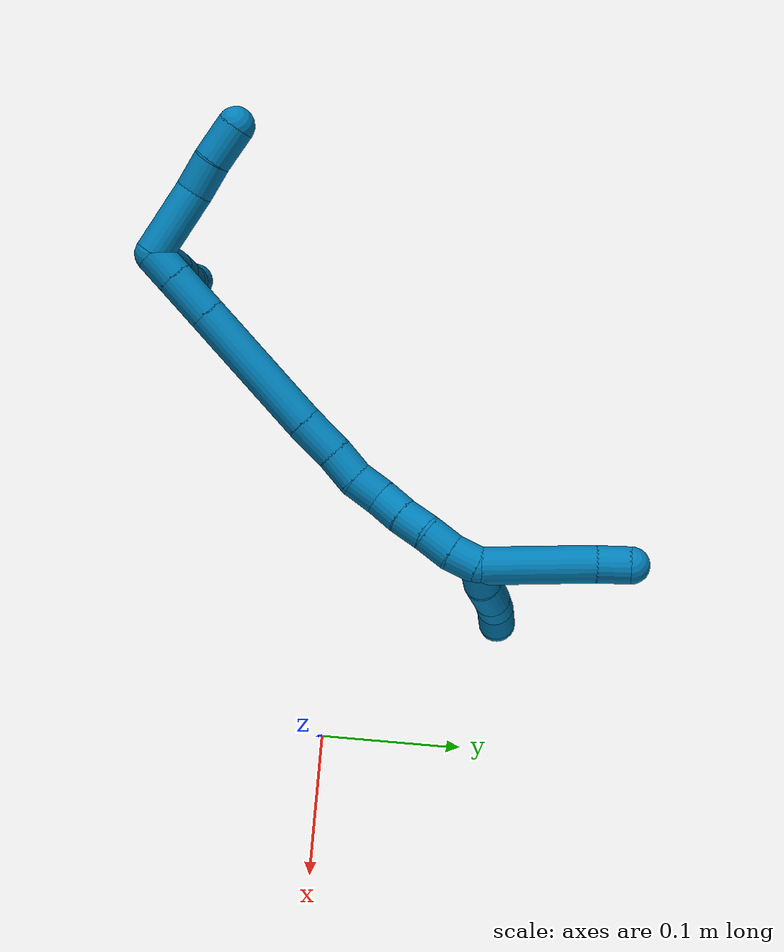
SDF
<sdf version="1.7">
 <world name="default">
  <model name="9">
   <static>0</static>
   <link name="9">
    <collision name="collision-cylinder-e_1_2_8">
     <pose>-0.012935 0.008031 -0.025464 -2.83608 -0.451135 1.95973</pose>
     <geometry><cylinder><radius>0.0125</radius><length>0.059337</length></cylinder></geometry>
     <surface>
      <friction><ode><mu>1.16</mu><mu2>1.16</mu2><slip1>0</slip1><slip2>0</slip2></ode></friction>
      <contact><ode><kp>1e+06</kp><kd>1</kd><max_vel>0</max_vel><min_depth>0.001</min_depth></ode></contact>
     </surface>
    </collision>
    <visual name="visual-cylinder-e_1_2_8">
     <pose>-0.012935 0.008031 -0.025464 -2.83608 -0.451135 1.95973</pose>
     <geometry><cylinder><radius>0.0125</radius><length>0.059337</length></cylinder></geometry>
     <material><ambient>0 0.490196 0.709804 1</ambient></material>
    </visual>
    <collision name="collision-cylinder-e_2_8_9">
     <pose>-0.031956 0.01914 -0.062742 -2.88671 -0.462445 2.14475</pose>
     <geometry><cylinder><radius>0.0125</radius><length>0.027283</length></cylinder></geometry>
     <surface>
      <friction><ode><mu>1.16</mu><mu2>1.16</mu2><slip1>0</slip1><slip2>0</slip2></ode></friction>
      <contact><ode><kp>1e+06</kp><kd>1</kd><max_vel>0</max_vel><min_depth>0.001</min_depth></ode></contact>
     </surface>
    </collision>
    <visual name="visual-cylinder-e_2_8_9">
     <pose>-0.031956 0.01914 -0.062742 -2.88671 -0.462445 2.14475</pose>
     <geometry><cylinder><radius>0.0125</radius><length>0.027283</length></cylinder></geometry>
     <material><ambient>0 0.490196 0.709804 1</ambient></material>
    </visual>
    <collision name="collision-cylinder-e_3_9_10">
     <pose>-0.042785 0.024737 -0.084583 -2.89549 -0.430163 2.11132</pose>
     <geometry><cylinder><radius>0.0125</radius><length>0.022749</length></cylinder></geometry>
     <surface>
      <friction><ode><mu>1.16</mu><mu2>1.16</mu2><slip1>0</slip1><slip2>0</slip2></ode></friction>
      <contact><ode><kp>1e+06</kp><kd>1</kd><max_vel>0</max_vel><min_depth>0.001</min_depth></ode></contact>
     </surface>
    </collision>
    <visual name="visual-cylinder-e_3_9_10">
     <pose>-0.042785 0.024737 -0.084583 -2.89549 -0.430163 2.11132</pose>
     <geometry><cylinder><radius>0.0125</radius><length>0.022749</length></cylinder></geometry>
     <material><ambient>0 0.490196 0.709804 1</ambient></material>
    </visual>
    <collision name="collision-cylinder-e_4_10_11">
     <pose>-0.052877 0.029602 -0.103026 -2.86965 -0.54928 2.2375</pose>
     <geometry><cylinder><radius>0.0125</radius><length>0.020489</length></cylinder></geometry>
     <surface>
      <friction><ode><mu>1.16</mu><mu2>1.16</mu2><slip1>0</slip1><slip2>0</slip2></ode></friction>
      <contact><ode><kp>1e+06</kp><kd>1</kd><max_vel>0</max_vel><min_depth>0.001</min_depth></ode></contact>
     </surface>
    </collision>
    <visual name="visual-cylinder-e_4_10_11">
     <pose>-0.052877 0.029602 -0.103026 -2.86965 -0.54928 2.2375</pose>
     <geometry><cylinder><radius>0.0125</radius><length>0.020489</length></cylinder></geometry>
     <material><ambient>0 0.490196 0.709804 1</ambient></material>
    </visual>
    <collision name="collision-cylinder-e_5_11_6">
     <pose>-0.063942 0.035216 -0.119063 -2.73666 -0.603645 1.97574</pose>
     <geometry><cylinder><radius>0.0125</radius><length>0.020142</length></cylinder></geometry>
     <surface>
      <friction><ode><mu>1.16</mu><mu2>1.16</mu2><slip1>0</slip1><slip2>0</slip2></ode></friction>
      <contact><ode><kp>1e+06</kp><kd>1</kd><max_vel>0</max_vel><min_depth>0.001</min_depth></ode></contact>
     </surface>
    </collision>
    <visual name="visual-cylinder-e_5_11_6">
     <pose>-0.063942 0.035216 -0.119063 -2.73666 -0.603645 1.97574</pose>
     <geometry><cylinder><radius>0.0125</radius><length>0.020142</length></cylinder></geometry>
     <material><ambient>0 0.490196 0.709804 1</ambient></material>
    </visual>
    <collision name="collision-cylinder-e_1_2_12">
     <pose>-0.005297 0.021486 0.010428 -1.11897 -0.218274 0.137021</pose>
     <geometry><cylinder><radius>0.0125</radius><length>0.048927</length></cylinder></geometry>
     <surface>
      <friction><ode><mu>1.16</mu><mu2>1.16</mu2><slip1>0</slip1><slip2>0</slip2></ode></friction>
      <contact><ode><kp>1e+06</kp><kd>1</kd><max_vel>0</max_vel><min_depth>0.001</min_depth></ode></contact>
     </surface>
    </collision>
    <visual name="visual-cylinder-e_1_2_12">
     <pose>-0.005297 0.021486 0.010428 -1.11897 -0.218274 0.137021</pose>
     <geometry><cylinder><radius>0.0125</radius><length>0.048927</length></cylinder></geometry>
     <material><ambient>0 0.490196 0.709804 1</ambient></material>
    </visual>
    <collision name="collision-cylinder-e_2_12_13">
     <pose>-0.011772 0.052374 0.028065 -0.916532 -0.09903 0.048881</pose>
     <geometry><cylinder><radius>0.0125</radius><length>0.023812</length></cylinder></geometry>
     <surface>
      <friction><ode><mu>1.16</mu><mu2>1.16</mu2><slip1>0</slip1><slip2>0</slip2></ode></friction>
      <contact><ode><kp>1e+06</kp><kd>1</kd><max_vel>0</max_vel><min_depth>0.001</min_depth></ode></contact>
     </surface>
    </collision>
    <visual name="visual-cylinder-e_2_12_13">
     <pose>-0.011772 0.052374 0.028065 -0.916532 -0.09903 0.048881</pose>
     <geometry><cylinder><radius>0.0125</radius><length>0.023812</length></cylinder></geometry>
     <material><ambient>0 0.490196 0.709804 1</ambient></material>
    </visual>
    <collision name="collision-cylinder-e_3_13_5">
     <pose>-0.014347 0.073411 0.042235 -1.03179 -0.102762 0.058313</pose>
     <geometry><cylinder><radius>0.0125</radius><length>0.027261</length></cylinder></geometry>
     <surface>
      <friction><ode><mu>1.16</mu><mu2>1.16</mu2><slip1>0</slip1><slip2>0</slip2></ode></friction>
      <contact><ode><kp>1e+06</kp><kd>1</kd><max_vel>0</max_vel><min_depth>0.001</min_depth></ode></contact>
     </surface>
    </collision>
    <visual name="visual-cylinder-e_3_13_5">
     <pose>-0.014347 0.073411 0.042235 -1.03179 -0.102762 0.058313</pose>
     <geometry><cylinder><radius>0.0125</radius><length>0.027261</length></cylinder></geometry>
     <material><ambient>0 0.490196 0.709804 1</ambient></material>
    </visual>
    <collision name="collision-cylinder-e_1_2_14">
     <pose>0.008758 0.001867 -0.005373 -2.80721 0.994784 -2.53884</pose>
     <geometry><cylinder><radius>0.0125</radius><length>0.020886</length></cylinder></geometry>
     <surface>
      <friction><ode><mu>1.16</mu><mu2>1.16</mu2><slip1>0</slip1><slip2>0</slip2></ode></friction>
      <contact><ode><kp>1e+06</kp><kd>1</kd><max_vel>0</max_vel><min_depth>0.001</min_depth></ode></contact>
     </surface>
    </collision>
    <visual name="visual-cylinder-e_1_2_14">
     <pose>0.008758 0.001867 -0.005373 -2.80721 0.994784 -2.53884</pose>
     <geometry><cylinder><radius>0.0125</radius><length>0.020886</length></cylinder></geometry>
     <material><ambient>0 0.490196 0.709804 1</ambient></material>
    </visual>
    <collision name="collision-cylinder-e_2_14_15">
     <pose>0.031023 0.006519 -0.018895 -2.8122 1.00319 -2.55303</pose>
     <geometry><cylinder><radius>0.0125</radius><length>0.032039</length></cylinder></geometry>
     <surface>
      <friction><ode><mu>1.16</mu><mu2>1.16</mu2><slip1>0</slip1><slip2>0</slip2></ode></friction>
      <contact><ode><kp>1e+06</kp><kd>1</kd><max_vel>0</max_vel><min_depth>0.001</min_depth></ode></contact>
     </surface>
    </collision>
    <visual name="visual-cylinder-e_2_14_15">
     <pose>0.031023 0.006519 -0.018895 -2.8122 1.00319 -2.55303</pose>
     <geometry><cylinder><radius>0.0125</radius><length>0.032039</length></cylinder></geometry>
     <material><ambient>0 0.490196 0.709804 1</ambient></material>
    </visual>
    <collision name="collision-cylinder-e_3_15_16">
     <pose>0.084704 0.017567 -0.051272 -2.81292 1.0035 -2.55447</pose>
     <geometry><cylinder><radius>0.0125</radius><length>0.095271</length></cylinder></geometry>
     <surface>
      <friction><ode><mu>1.16</mu><mu2>1.16</mu2><slip1>0</slip1><slip2>0</slip2></ode></friction>
      <contact><ode><kp>1e+06</kp><kd>1</kd><max_vel>0</max_vel><min_depth>0.001</min_depth></ode></contact>
     </surface>
    </collision>
    <visual name="visual-cylinder-e_3_15_16">
     <pose>0.084704 0.017567 -0.051272 -2.81292 1.0035 -2.55447</pose>
     <geometry><cylinder><radius>0.0125</radius><length>0.095271</length></cylinder></geometry>
     <material><ambient>0 0.490196 0.709804 1</ambient></material>
    </visual>
    <collision name="collision-cylinder-e_4_16_17">
     <pose>0.136743 0.02902 -0.082739 -2.72659 0.982714 -2.39195</pose>
     <geometry><cylinder><radius>0.0125</radius><length>0.02852</length></cylinder></geometry>
     <surface>
      <friction><ode><mu>1.16</mu><mu2>1.16</mu2><slip1>0</slip1><slip2>0</slip2></ode></friction>
      <contact><ode><kp>1e+06</kp><kd>1</kd><max_vel>0</max_vel><min_depth>0.001</min_depth></ode></contact>
     </surface>
    </collision>
    <visual name="visual-cylinder-e_4_16_17">
     <pose>0.136743 0.02902 -0.082739 -2.72659 0.982714 -2.39195</pose>
     <geometry><cylinder><radius>0.0125</radius><length>0.02852</length></cylinder></geometry>
     <material><ambient>0 0.490196 0.709804 1</ambient></material>
    </visual>
    <collision name="collision-cylinder-e_5_17_18">
     <pose>0.158096 0.033645 -0.095209 -2.87367 1.0515 -2.68515</pose>
     <geometry><cylinder><radius>0.0125</radius><length>0.02186</length></cylinder></geometry>
     <surface>
      <friction><ode><mu>1.16</mu><mu2>1.16</mu2><slip1>0</slip1><slip2>0</slip2></ode></friction>
      <contact><ode><kp>1e+06</kp><kd>1</kd><max_vel>0</max_vel><min_depth>0.001</min_depth></ode></contact>
     </surface>
    </collision>
    <visual name="visual-cylinder-e_5_17_18">
     <pose>0.158096 0.033645 -0.095209 -2.87367 1.0515 -2.68515</pose>
     <geometry><cylinder><radius>0.0125</radius><length>0.02186</length></cylinder></geometry>
     <material><ambient>0 0.490196 0.709804 1</ambient></material>
    </visual>
    <collision name="collision-cylinder-e_6_18_19">
     <pose>0.176303 0.038754 -0.104576 -2.41547 1.00533 -1.93224</pose>
     <geometry><cylinder><radius>0.0125</radius><length>0.020649</length></cylinder></geometry>
     <surface>
      <friction><ode><mu>1.16</mu><mu2>1.16</mu2><slip1>0</slip1><slip2>0</slip2></ode></friction>
      <contact><ode><kp>1e+06</kp><kd>1</kd><max_vel>0</max_vel><min_depth>0.001</min_depth></ode></contact>
     </surface>
    </collision>
    <visual name="visual-cylinder-e_6_18_19">
     <pose>0.176303 0.038754 -0.104576 -2.41547 1.00533 -1.93224</pose>
     <geometry><cylinder><radius>0.0125</radius><length>0.020649</length></cylinder></geometry>
     <material><ambient>0 0.490196 0.709804 1</ambient></material>
    </visual>
    <collision name="collision-cylinder-e_7_19_20">
     <pose>0.19465 0.044725 -0.110557 -2.24723 1.27392 -1.99133</pose>
     <geometry><cylinder><radius>0.0125</radius><length>0.020141</length></cylinder></geometry>
     <surface>
      <friction><ode><mu>1.16</mu><mu2>1.16</mu2><slip1>0</slip1><slip2>0</slip2></ode></friction>
      <contact><ode><kp>1e+06</kp><kd>1</kd><max_vel>0</max_vel><min_depth>0.001</min_depth></ode></contact>
     </surface>
    </collision>
    <visual name="visual-cylinder-e_7_19_20">
     <pose>0.19465 0.044725 -0.110557 -2.24723 1.27392 -1.99133</pose>
     <geometry><cylinder><radius>0.0125</radius><length>0.020141</length></cylinder></geometry>
     <material><ambient>0 0.490196 0.709804 1</ambient></material>
    </visual>
    <collision name="collision-cylinder-e_8_20_21">
     <pose>0.213683 0.050191 -0.113811 -1.98925 1.21741 -1.64099</pose>
     <geometry><cylinder><radius>0.0125</radius><length>0.020044</length></cylinder></geometry>
     <surface>
      <friction><ode><mu>1.16</mu><mu2>1.16</mu2><slip1>0</slip1><slip2>0</slip2></ode></friction>
      <contact><ode><kp>1e+06</kp><kd>1</kd><max_vel>0</max_vel><min_depth>0.001</min_depth></ode></contact>
     </surface>
    </collision>
    <visual name="visual-cylinder-e_8_20_21">
     <pose>0.213683 0.050191 -0.113811 -1.98925 1.21741 -1.64099</pose>
     <geometry><cylinder><radius>0.0125</radius><length>0.020044</length></cylinder></geometry>
     <material><ambient>0 0.490196 0.709804 1</ambient></material>
    </visual>
    <collision name="collision-cylinder-e_9_21_22">
     <pose>0.232211 0.056615 -0.118658 -2.38361 1.09222 -1.98147</pose>
     <geometry><cylinder><radius>0.0125</radius><length>0.02056</length></cylinder></geometry>
     <surface>
      <friction><ode><mu>1.16</mu><mu2>1.16</mu2><slip1>0</slip1><slip2>0</slip2></ode></friction>
      <contact><ode><kp>1e+06</kp><kd>1</kd><max_vel>0</max_vel><min_depth>0.001</min_depth></ode></contact>
     </surface>
    </collision>
    <visual name="visual-cylinder-e_9_21_22">
     <pose>0.232211 0.056615 -0.118658 -2.38361 1.09222 -1.98147</pose>
     <geometry><cylinder><radius>0.0125</radius><length>0.02056</length></cylinder></geometry>
     <material><ambient>0 0.490196 0.709804 1</ambient></material>
    </visual>
    <collision name="collision-cylinder-e_10_22_1">
     <pose>0.249749 0.064745 -0.124491 -2.02731 0.99745 -1.43684</pose>
     <geometry><cylinder><radius>0.0125</radius><length>0.020029</length></cylinder></geometry>
     <surface>
      <friction><ode><mu>1.16</mu><mu2>1.16</mu2><slip1>0</slip1><slip2>0</slip2></ode></friction>
      <contact><ode><kp>1e+06</kp><kd>1</kd><max_vel>0</max_vel><min_depth>0.001</min_depth></ode></contact>
     </surface>
    </collision>
    <visual name="visual-cylinder-e_10_22_1">
     <pose>0.249749 0.064745 -0.124491 -2.02731 0.99745 -1.43684</pose>
     <geometry><cylinder><radius>0.0125</radius><length>0.020029</length></cylinder></geometry>
     <material><ambient>0 0.490196 0.709804 1</ambient></material>
    </visual>
    <collision name="collision-cylinder-e_1_1_23">
     <pose>0.25822 0.06949 -0.137974 3.12973 0.005241 0.831857</pose>
     <geometry><cylinder><radius>0.0125</radius><length>0.022178</length></cylinder></geometry>
     <surface>
      <friction><ode><mu>1.16</mu><mu2>1.16</mu2><slip1>0</slip1><slip2>0</slip2></ode></friction>
      <contact><ode><kp>1e+06</kp><kd>1</kd><max_vel>0</max_vel><min_depth>0.001</min_depth></ode></contact>
     </surface>
    </collision>
    <visual name="visual-cylinder-e_1_1_23">
     <pose>0.25822 0.06949 -0.137974 3.12973 0.005241 0.831857</pose>
     <geometry><cylinder><radius>0.0125</radius><length>0.022178</length></cylinder></geometry>
     <material><ambient>0 0.490196 0.709804 1</ambient></material>
    </visual>
    <collision name="collision-cylinder-e_2_23_24">
     <pose>0.256239 0.072627 -0.166577 -2.9571 -0.113997 1.10537</pose>
     <geometry><cylinder><radius>0.0125</radius><length>0.035868</length></cylinder></geometry>
     <surface>
      <friction><ode><mu>1.16</mu><mu2>1.16</mu2><slip1>0</slip1><slip2>0</slip2></ode></friction>
      <contact><ode><kp>1e+06</kp><kd>1</kd><max_vel>0</max_vel><min_depth>0.001</min_depth></ode></contact>
     </surface>
    </collision>
    <visual name="visual-cylinder-e_2_23_24">
     <pose>0.256239 0.072627 -0.166577 -2.9571 -0.113997 1.10537</pose>
     <geometry><cylinder><radius>0.0125</radius><length>0.035868</length></cylinder></geometry>
     <material><ambient>0 0.490196 0.709804 1</ambient></material>
    </visual>
    <collision name="collision-cylinder-e_3_24_25">
     <pose>0.25263 0.077315 -0.1945 -3.00607 -0.148198 1.66042</pose>
     <geometry><cylinder><radius>0.0125</radius><length>0.02124</length></cylinder></geometry>
     <surface>
      <friction><ode><mu>1.16</mu><mu2>1.16</mu2><slip1>0</slip1><slip2>0</slip2></ode></friction>
      <contact><ode><kp>1e+06</kp><kd>1</kd><max_vel>0</max_vel><min_depth>0.001</min_depth></ode></contact>
     </surface>
    </collision>
    <visual name="visual-cylinder-e_3_24_25">
     <pose>0.25263 0.077315 -0.1945 -3.00607 -0.148198 1.66042</pose>
     <geometry><cylinder><radius>0.0125</radius><length>0.02124</length></cylinder></geometry>
     <material><ambient>0 0.490196 0.709804 1</ambient></material>
    </visual>
    <collision name="collision-cylinder-e_4_25_4">
     <pose>0.251385 0.078148 -0.215243 3.08494 0.031192 1.00647</pose>
     <geometry><cylinder><radius>0.0125</radius><length>0.020713</length></cylinder></geometry>
     <surface>
      <friction><ode><mu>1.16</mu><mu2>1.16</mu2><slip1>0</slip1><slip2>0</slip2></ode></friction>
      <contact><ode><kp>1e+06</kp><kd>1</kd><max_vel>0</max_vel><min_depth>0.001</min_depth></ode></contact>
     </surface>
    </collision>
    <visual name="visual-cylinder-e_4_25_4">
     <pose>0.251385 0.078148 -0.215243 3.08494 0.031192 1.00647</pose>
     <geometry><cylinder><radius>0.0125</radius><length>0.020713</length></cylinder></geometry>
     <material><ambient>0 0.490196 0.709804 1</ambient></material>
    </visual>
    <collision name="collision-cylinder-e_1_1_26">
     <pose>0.27672 0.102497 -0.134526 -1.79916 0.50272 -0.62542</pose>
     <geometry><cylinder><radius>0.0125</radius><length>0.077034</length></cylinder></geometry>
     <surface>
      <friction><ode><mu>1.16</mu><mu2>1.16</mu2><slip1>0</slip1><slip2>0</slip2></ode></friction>
      <contact><ode><kp>1e+06</kp><kd>1</kd><max_vel>0</max_vel><min_depth>0.001</min_depth></ode></contact>
     </surface>
    </collision>
    <visual name="visual-cylinder-e_1_1_26">
     <pose>0.27672 0.102497 -0.134526 -1.79916 0.50272 -0.62542</pose>
     <geometry><cylinder><radius>0.0125</radius><length>0.077034</length></cylinder></geometry>
     <material><ambient>0 0.490196 0.709804 1</ambient></material>
    </visual>
    <collision name="collision-cylinder-e_2_26_3">
     <pose>0.302246 0.144463 -0.142979 -1.65986 0.652057 -0.708109</pose>
     <geometry><cylinder><radius>0.0125</radius><length>0.022966</length></cylinder></geometry>
     <surface>
      <friction><ode><mu>1.16</mu><mu2>1.16</mu2><slip1>0</slip1><slip2>0</slip2></ode></friction>
      <contact><ode><kp>1e+06</kp><kd>1</kd><max_vel>0</max_vel><min_depth>0.001</min_depth></ode></contact>
     </surface>
    </collision>
    <visual name="visual-cylinder-e_2_26_3">
     <pose>0.302246 0.144463 -0.142979 -1.65986 0.652057 -0.708109</pose>
     <geometry><cylinder><radius>0.0125</radius><length>0.022966</length></cylinder></geometry>
     <material><ambient>0 0.490196 0.709804 1</ambient></material>
    </visual>
    <collision name="collision-sphere-3">
     <pose>0.309214 0.153554 -0.143791 0 -0 0</pose>
     <geometry><sphere><radius>0.0125</radius></sphere></geometry>
     <surface>
      <friction><ode><mu>1.16</mu><mu2>1.16</mu2><slip1>0</slip1><slip2>0</slip2></ode></friction>
      <contact><ode><kp>1e+06</kp><kd>1</kd><max_vel>0</max_vel><min_depth>0.001</min_depth></ode></contact>
     </surface>
    </collision>
    <visual name="visual-sphere-3">
     <pose>0.309214 0.153554 -0.143791 0 -0 0</pose>
     <geometry><sphere><radius>0.0125</radius></sphere></geometry>
     <material><ambient>0 0.490196 0.709804 1</ambient></material>
    </visual>
    <collision name="collision-sphere-26">
     <pose>0.295278 0.135372 -0.142167 0 -0 0</pose>
     <geometry><sphere><radius>0.0125</radius></sphere></geometry>
     <surface>
      <friction><ode><mu>1.16</mu><mu2>1.16</mu2><slip1>0</slip1><slip2>0</slip2></ode></friction>
      <contact><ode><kp>1e+06</kp><kd>1</kd><max_vel>0</max_vel><min_depth>0.001</min_depth></ode></contact>
     </surface>
    </collision>
    <visual name="visual-sphere-26">
     <pose>0.295278 0.135372 -0.142167 0 -0 0</pose>
     <geometry><sphere><radius>0.0125</radius></sphere></geometry>
     <material><ambient>0 0.490196 0.709804 1</ambient></material>
    </visual>
    <collision name="collision-sphere-4">
     <pose>0.251708 0.077562 -0.225577 0 -0 0</pose>
     <geometry><sphere><radius>0.0125</radius></sphere></geometry>
     <surface>
      <friction><ode><mu>1.16</mu><mu2>1.16</mu2><slip1>0</slip1><slip2>0</slip2></ode></friction>
      <contact><ode><kp>1e+06</kp><kd>1</kd><max_vel>0</max_vel><min_depth>0.001</min_depth></ode></contact>
     </surface>
    </collision>
    <visual name="visual-sphere-4">
     <pose>0.251708 0.077562 -0.225577 0 -0 0</pose>
     <geometry><sphere><radius>0.0125</radius></sphere></geometry>
     <material><ambient>0 0.490196 0.709804 1</ambient></material>
    </visual>
    <collision name="collision-sphere-25">
     <pose>0.251062 0.078734 -0.204908 0 -0 0</pose>
     <geometry><sphere><radius>0.0125</radius></sphere></geometry>
     <surface>
      <friction><ode><mu>1.16</mu><mu2>1.16</mu2><slip1>0</slip1><slip2>0</slip2></ode></friction>
      <contact><ode><kp>1e+06</kp><kd>1</kd><max_vel>0</max_vel><min_depth>0.001</min_depth></ode></contact>
     </surface>
    </collision>
    <visual name="visual-sphere-25">
     <pose>0.251062 0.078734 -0.204908 0 -0 0</pose>
     <geometry><sphere><radius>0.0125</radius></sphere></geometry>
     <material><ambient>0 0.490196 0.709804 1</ambient></material>
    </visual>
    <collision name="collision-sphere-24">
     <pose>0.254199 0.075896 -0.184093 0 -0 0</pose>
     <geometry><sphere><radius>0.0125</radius></sphere></geometry>
     <surface>
      <friction><ode><mu>1.16</mu><mu2>1.16</mu2><slip1>0</slip1><slip2>0</slip2></ode></friction>
      <contact><ode><kp>1e+06</kp><kd>1</kd><max_vel>0</max_vel><min_depth>0.001</min_depth></ode></contact>
     </surface>
    </collision>
    <visual name="visual-sphere-24">
     <pose>0.254199 0.075896 -0.184093 0 -0 0</pose>
     <geometry><sphere><radius>0.0125</radius></sphere></geometry>
     <material><ambient>0 0.490196 0.709804 1</ambient></material>
    </visual>
    <collision name="collision-sphere-23">
     <pose>0.258279 0.069358 -0.149062 0 -0 0</pose>
     <geometry><sphere><radius>0.0125</radius></sphere></geometry>
     <surface>
      <friction><ode><mu>1.16</mu><mu2>1.16</mu2><slip1>0</slip1><slip2>0</slip2></ode></friction>
      <contact><ode><kp>1e+06</kp><kd>1</kd><max_vel>0</max_vel><min_depth>0.001</min_depth></ode></contact>
     </surface>
    </collision>
    <visual name="visual-sphere-23">
     <pose>0.258279 0.069358 -0.149062 0 -0 0</pose>
     <geometry><sphere><radius>0.0125</radius></sphere></geometry>
     <material><ambient>0 0.490196 0.709804 1</ambient></material>
    </visual>
    <collision name="collision-sphere-1">
     <pose>0.258162 0.069622 -0.126885 0 -0 0</pose>
     <geometry><sphere><radius>0.0125</radius></sphere></geometry>
     <surface>
      <friction><ode><mu>1.16</mu><mu2>1.16</mu2><slip1>0</slip1><slip2>0</slip2></ode></friction>
      <contact><ode><kp>1e+06</kp><kd>1</kd><max_vel>0</max_vel><min_depth>0.001</min_depth></ode></contact>
     </surface>
    </collision>
    <visual name="visual-sphere-1">
     <pose>0.258162 0.069622 -0.126885 0 -0 0</pose>
     <geometry><sphere><radius>0.0125</radius></sphere></geometry>
     <material><ambient>0 0.490196 0.709804 1</ambient></material>
    </visual>
    <collision name="collision-sphere-22">
     <pose>0.241336 0.059869 -0.122096 0 -0 0</pose>
     <geometry><sphere><radius>0.0125</radius></sphere></geometry>
     <surface>
      <friction><ode><mu>1.16</mu><mu2>1.16</mu2><slip1>0</slip1><slip2>0</slip2></ode></friction>
      <contact><ode><kp>1e+06</kp><kd>1</kd><max_vel>0</max_vel><min_depth>0.001</min_depth></ode></contact>
     </surface>
    </collision>
    <visual name="visual-sphere-22">
     <pose>0.241336 0.059869 -0.122096 0 -0 0</pose>
     <geometry><sphere><radius>0.0125</radius></sphere></geometry>
     <material><ambient>0 0.490196 0.709804 1</ambient></material>
    </visual>
    <collision name="collision-sphere-21">
     <pose>0.223086 0.05336 -0.11522 0 -0 0</pose>
     <geometry><sphere><radius>0.0125</radius></sphere></geometry>
     <surface>
      <friction><ode><mu>1.16</mu><mu2>1.16</mu2><slip1>0</slip1><slip2>0</slip2></ode></friction>
      <contact><ode><kp>1e+06</kp><kd>1</kd><max_vel>0</max_vel><min_depth>0.001</min_depth></ode></contact>
     </surface>
    </collision>
    <visual name="visual-sphere-21">
     <pose>0.223086 0.05336 -0.11522 0 -0 0</pose>
     <geometry><sphere><radius>0.0125</radius></sphere></geometry>
     <material><ambient>0 0.490196 0.709804 1</ambient></material>
    </visual>
    <collision name="collision-sphere-6">
     <pose>-0.069659 0.038482 -0.126684 0 -0 0</pose>
     <geometry><sphere><radius>0.0125</radius></sphere></geometry>
     <surface>
      <friction><ode><mu>1.16</mu><mu2>1.16</mu2><slip1>0</slip1><slip2>0</slip2></ode></friction>
      <contact><ode><kp>1e+06</kp><kd>1</kd><max_vel>0</max_vel><min_depth>0.001</min_depth></ode></contact>
     </surface>
    </collision>
    <visual name="visual-sphere-6">
     <pose>-0.069659 0.038482 -0.126684 0 -0 0</pose>
     <geometry><sphere><radius>0.0125</radius></sphere></geometry>
     <material><ambient>0 0.490196 0.709804 1</ambient></material>
    </visual>
    <collision name="collision-sphere-11">
     <pose>-0.058226 0.031949 -0.111442 0 -0 0</pose>
     <geometry><sphere><radius>0.0125</radius></sphere></geometry>
     <surface>
      <friction><ode><mu>1.16</mu><mu2>1.16</mu2><slip1>0</slip1><slip2>0</slip2></ode></friction>
      <contact><ode><kp>1e+06</kp><kd>1</kd><max_vel>0</max_vel><min_depth>0.001</min_depth></ode></contact>
     </surface>
    </collision>
    <visual name="visual-sphere-11">
     <pose>-0.058226 0.031949 -0.111442 0 -0 0</pose>
     <geometry><sphere><radius>0.0125</radius></sphere></geometry>
     <material><ambient>0 0.490196 0.709804 1</ambient></material>
    </visual>
    <collision name="collision-sphere-10">
     <pose>-0.047529 0.027255 -0.094609 0 -0 0</pose>
     <geometry><sphere><radius>0.0125</radius></sphere></geometry>
     <surface>
      <friction><ode><mu>1.16</mu><mu2>1.16</mu2><slip1>0</slip1><slip2>0</slip2></ode></friction>
      <contact><ode><kp>1e+06</kp><kd>1</kd><max_vel>0</max_vel><min_depth>0.001</min_depth></ode></contact>
     </surface>
    </collision>
    <visual name="visual-sphere-10">
     <pose>-0.047529 0.027255 -0.094609 0 -0 0</pose>
     <geometry><sphere><radius>0.0125</radius></sphere></geometry>
     <material><ambient>0 0.490196 0.709804 1</ambient></material>
    </visual>
    <collision name="collision-sphere-9">
     <pose>-0.038042 0.022218 -0.074556 0 -0 0</pose>
     <geometry><sphere><radius>0.0125</radius></sphere></geometry>
     <surface>
      <friction><ode><mu>1.16</mu><mu2>1.16</mu2><slip1>0</slip1><slip2>0</slip2></ode></friction>
      <contact><ode><kp>1e+06</kp><kd>1</kd><max_vel>0</max_vel><min_depth>0.001</min_depth></ode></contact>
     </surface>
    </collision>
    <visual name="visual-sphere-9">
     <pose>-0.038042 0.022218 -0.074556 0 -0 0</pose>
     <geometry><sphere><radius>0.0125</radius></sphere></geometry>
     <material><ambient>0 0.490196 0.709804 1</ambient></material>
    </visual>
    <collision name="collision-sphere-2">
     <geometry><sphere><radius>0.0125</radius></sphere></geometry>
     <surface>
      <friction><ode><mu>1.16</mu><mu2>1.16</mu2><slip1>0</slip1><slip2>0</slip2></ode></friction>
      <contact><ode><kp>1e+06</kp><kd>1</kd><max_vel>0</max_vel><min_depth>0.001</min_depth></ode></contact>
     </surface>
    </collision>
    <visual name="visual-sphere-2">
     <geometry><sphere><radius>0.0125</radius></sphere></geometry>
     <material><ambient>0 0.490196 0.709804 1</ambient></material>
    </visual>
    <collision name="collision-sphere-19">
     <pose>0.18502 0.042427 -0.108713 0 -0 0</pose>
     <geometry><sphere><radius>0.0125</radius></sphere></geometry>
     <surface>
      <friction><ode><mu>1.16</mu><mu2>1.16</mu2><slip1>0</slip1><slip2>0</slip2></ode></friction>
      <contact><ode><kp>1e+06</kp><kd>1</kd><max_vel>0</max_vel><min_depth>0.001</min_depth></ode></contact>
     </surface>
    </collision>
    <visual name="visual-sphere-19">
     <pose>0.18502 0.042427 -0.108713 0 -0 0</pose>
     <geometry><sphere><radius>0.0125</radius></sphere></geometry>
     <material><ambient>0 0.490196 0.709804 1</ambient></material>
    </visual>
    <collision name="collision-sphere-8">
     <pose>-0.02587 0.016062 -0.050927 0 -0 0</pose>
     <geometry><sphere><radius>0.0125</radius></sphere></geometry>
     <surface>
      <friction><ode><mu>1.16</mu><mu2>1.16</mu2><slip1>0</slip1><slip2>0</slip2></ode></friction>
      <contact><ode><kp>1e+06</kp><kd>1</kd><max_vel>0</max_vel><min_depth>0.001</min_depth></ode></contact>
     </surface>
    </collision>
    <visual name="visual-sphere-8">
     <pose>-0.02587 0.016062 -0.050927 0 -0 0</pose>
     <geometry><sphere><radius>0.0125</radius></sphere></geometry>
     <material><ambient>0 0.490196 0.709804 1</ambient></material>
    </visual>
    <collision name="collision-sphere-12">
     <pose>-0.010595 0.042973 0.020855 0 -0 0</pose>
     <geometry><sphere><radius>0.0125</radius></sphere></geometry>
     <surface>
      <friction><ode><mu>1.16</mu><mu2>1.16</mu2><slip1>0</slip1><slip2>0</slip2></ode></friction>
      <contact><ode><kp>1e+06</kp><kd>1</kd><max_vel>0</max_vel><min_depth>0.001</min_depth></ode></contact>
     </surface>
    </collision>
    <visual name="visual-sphere-12">
     <pose>-0.010595 0.042973 0.020855 0 -0 0</pose>
     <geometry><sphere><radius>0.0125</radius></sphere></geometry>
     <material><ambient>0 0.490196 0.709804 1</ambient></material>
    </visual>
    <collision name="collision-sphere-13">
     <pose>-0.012949 0.061775 0.035275 0 -0 0</pose>
     <geometry><sphere><radius>0.0125</radius></sphere></geometry>
     <surface>
      <friction><ode><mu>1.16</mu><mu2>1.16</mu2><slip1>0</slip1><slip2>0</slip2></ode></friction>
      <contact><ode><kp>1e+06</kp><kd>1</kd><max_vel>0</max_vel><min_depth>0.001</min_depth></ode></contact>
     </surface>
    </collision>
    <visual name="visual-sphere-13">
     <pose>-0.012949 0.061775 0.035275 0 -0 0</pose>
     <geometry><sphere><radius>0.0125</radius></sphere></geometry>
     <material><ambient>0 0.490196 0.709804 1</ambient></material>
    </visual>
    <collision name="collision-sphere-5">
     <pose>-0.015746 0.085047 0.049194 0 -0 0</pose>
     <geometry><sphere><radius>0.0125</radius></sphere></geometry>
     <surface>
      <friction><ode><mu>1.16</mu><mu2>1.16</mu2><slip1>0</slip1><slip2>0</slip2></ode></friction>
      <contact><ode><kp>1e+06</kp><kd>1</kd><max_vel>0</max_vel><min_depth>0.001</min_depth></ode></contact>
     </surface>
    </collision>
    <visual name="visual-sphere-5">
     <pose>-0.015746 0.085047 0.049194 0 -0 0</pose>
     <geometry><sphere><radius>0.0125</radius></sphere></geometry>
     <material><ambient>0 0.490196 0.709804 1</ambient></material>
    </visual>
    <collision name="collision-sphere-14">
     <pose>0.017515 0.003733 -0.010746 0 -0 0</pose>
     <geometry><sphere><radius>0.0125</radius></sphere></geometry>
     <surface>
      <friction><ode><mu>1.16</mu><mu2>1.16</mu2><slip1>0</slip1><slip2>0</slip2></ode></friction>
      <contact><ode><kp>1e+06</kp><kd>1</kd><max_vel>0</max_vel><min_depth>0.001</min_depth></ode></contact>
     </surface>
    </collision>
    <visual name="visual-sphere-14">
     <pose>0.017515 0.003733 -0.010746 0 -0 0</pose>
     <geometry><sphere><radius>0.0125</radius></sphere></geometry>
     <material><ambient>0 0.490196 0.709804 1</ambient></material>
    </visual>
    <collision name="collision-sphere-15">
     <pose>0.04453 0.009305 -0.027045 0 -0 0</pose>
     <geometry><sphere><radius>0.0125</radius></sphere></geometry>
     <surface>
      <friction><ode><mu>1.16</mu><mu2>1.16</mu2><slip1>0</slip1><slip2>0</slip2></ode></friction>
      <contact><ode><kp>1e+06</kp><kd>1</kd><max_vel>0</max_vel><min_depth>0.001</min_depth></ode></contact>
     </surface>
    </collision>
    <visual name="visual-sphere-15">
     <pose>0.04453 0.009305 -0.027045 0 -0 0</pose>
     <geometry><sphere><radius>0.0125</radius></sphere></geometry>
     <material><ambient>0 0.490196 0.709804 1</ambient></material>
    </visual>
    <collision name="collision-sphere-16">
     <pose>0.124878 0.02583 -0.075499 0 -0 0</pose>
     <geometry><sphere><radius>0.0125</radius></sphere></geometry>
     <surface>
      <friction><ode><mu>1.16</mu><mu2>1.16</mu2><slip1>0</slip1><slip2>0</slip2></ode></friction>
      <contact><ode><kp>1e+06</kp><kd>1</kd><max_vel>0</max_vel><min_depth>0.001</min_depth></ode></contact>
     </surface>
    </collision>
    <visual name="visual-sphere-16">
     <pose>0.124878 0.02583 -0.075499 0 -0 0</pose>
     <geometry><sphere><radius>0.0125</radius></sphere></geometry>
     <material><ambient>0 0.490196 0.709804 1</ambient></material>
    </visual>
    <collision name="collision-sphere-17">
     <pose>0.148607 0.032209 -0.089978 0 -0 0</pose>
     <geometry><sphere><radius>0.0125</radius></sphere></geometry>
     <surface>
      <friction><ode><mu>1.16</mu><mu2>1.16</mu2><slip1>0</slip1><slip2>0</slip2></ode></friction>
      <contact><ode><kp>1e+06</kp><kd>1</kd><max_vel>0</max_vel><min_depth>0.001</min_depth></ode></contact>
     </surface>
    </collision>
    <visual name="visual-sphere-17">
     <pose>0.148607 0.032209 -0.089978 0 -0 0</pose>
     <geometry><sphere><radius>0.0125</radius></sphere></geometry>
     <material><ambient>0 0.490196 0.709804 1</ambient></material>
    </visual>
    <collision name="collision-sphere-18">
     <pose>0.167585 0.035081 -0.10044 0 -0 0</pose>
     <geometry><sphere><radius>0.0125</radius></sphere></geometry>
     <surface>
      <friction><ode><mu>1.16</mu><mu2>1.16</mu2><slip1>0</slip1><slip2>0</slip2></ode></friction>
      <contact><ode><kp>1e+06</kp><kd>1</kd><max_vel>0</max_vel><min_depth>0.001</min_depth></ode></contact>
     </surface>
    </collision>
    <visual name="visual-sphere-18">
     <pose>0.167585 0.035081 -0.10044 0 -0 0</pose>
     <geometry><sphere><radius>0.0125</radius></sphere></geometry>
     <material><ambient>0 0.490196 0.709804 1</ambient></material>
    </visual>
    <collision name="collision-sphere-20">
     <pose>0.20428 0.047022 -0.112401 0 -0 0</pose>
     <geometry><sphere><radius>0.0125</radius></sphere></geometry>
     <surface>
      <friction><ode><mu>1.16</mu><mu2>1.16</mu2><slip1>0</slip1><slip2>0</slip2></ode></friction>
      <contact><ode><kp>1e+06</kp><kd>1</kd><max_vel>0</max_vel><min_depth>0.001</min_depth></ode></contact>
     </surface>
    </collision>
    <visual name="visual-sphere-20">
     <pose>0.20428 0.047022 -0.112401 0 -0 0</pose>
     <geometry><sphere><radius>0.0125</radius></sphere></geometry>
     <material><ambient>0 0.490196 0.709804 1</ambient></material>
    </visual>
    <inertial>
     <pose>0.114743 0.045933 -0.080321 0 -0 0</pose>
     <mass>0.75</mass>
     <inertia><ixx>0</ixx><ixy>0</ixy><ixz>0</ixz><iyy>0.000114</iyy><iyz>0</iyz><izz>-0.000186</izz></inertia>
    </inertial>
   </link>
   <pose>-0.305193 -0.132927 0.159805 -0.140895 -0.439678 0.719433</pose>
  </model>
 </world>
</sdf>
